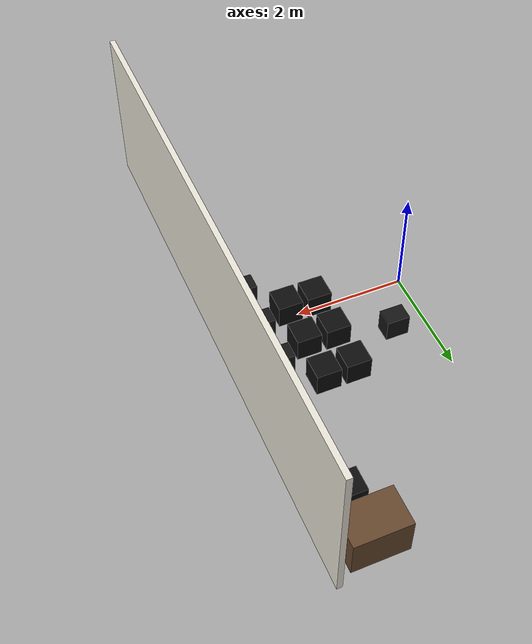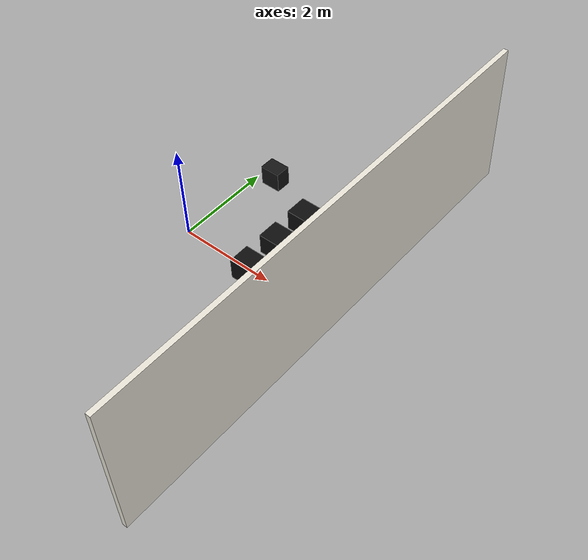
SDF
<sdf version="1.9">
 <world name="cs_classroom">
  <model name="wall_east">
   <static>true</static>
   <pose>3.55 0 1.5 0 0 0</pose>
   <link name="link">
    <collision name="collision"><geometry><box><size>0.1 10.0 3.0</size></box></geometry></collision>
    <visual name="visual">
     <geometry><box><size>0.1 10.0 3.0</size></box></geometry>
     <material>
      <ambient>0.92 0.9 0.85 1.0</ambient>
      <diffuse>0.92 0.9 0.85 1.0</diffuse>
      <specular>0.3 0.3 0.3 1.0</specular>
     </material>
    </visual>
   </link>
  </model>
  <model name="window_east">
   <static>true</static>
   <pose>3.45 0 1.5 0 0 0</pose>
   <link name="link">
    <visual name="visual">
     <geometry><box><size>0.04 7.0 1.0</size></box></geometry>
     <material>
      <ambient>0.45 0.65 0.95 0.45</ambient>
      <diffuse>0.45 0.65 0.95 0.45</diffuse>
      <specular>0.3 0.3 0.3 0.45</specular>
     </material>
    </visual>
   </link>
  </model>
  <model name="teacher_desk">
   <static>true</static>
   <pose>2.8 4.5 0.375 0 0 0</pose>
   <link name="link">
    <collision name="collision"><geometry><box><size>1.0 0.7 0.75</size></box></geometry></collision>
    <visual name="visual">
     <geometry><box><size>1.0 0.7 0.75</size></box></geometry>
     <material>
      <ambient>0.4 0.28 0.18 1.0</ambient>
      <diffuse>0.4 0.28 0.18 1.0</diffuse>
      <specular>0.3 0.3 0.3 1.0</specular>
     </material>
    </visual>
   </link>
  </model>
  <model name="teacher_chair">
   <static>true</static>
   <pose>2.8 3.7 0.225 0 0 0</pose>
   <link name="link">
    <collision name="collision"><geometry><box><size>0.45 0.45 0.45</size></box></geometry></collision>
    <visual name="visual">
     <geometry><box><size>0.45 0.45 0.45</size></box></geometry>
     <material>
      <ambient>0.05 0.05 0.05 1.0</ambient>
      <diffuse>0.05 0.05 0.05 1.0</diffuse>
      <specular>0.3 0.3 0.3 1.0</specular>
     </material>
    </visual>
   </link>
  </model>
  <model name="chair_T2_4">
   <static>true</static>
   <pose>1.65 -0.09999999999999964 0.225 0 0 0</pose>
   <link name="link">
    <collision name="collision"><geometry><box><size>0.45 0.45 0.45</size></box></geometry></collision>
    <visual name="visual">
     <geometry><box><size>0.45 0.45 0.45</size></box></geometry>
     <material>
      <ambient>0.05 0.05 0.05 1.0</ambient>
      <diffuse>0.05 0.05 0.05 1.0</diffuse>
      <specular>0.3 0.3 0.3 1.0</specular>
     </material>
    </visual>
   </link>
  </model>
  <model name="chair_T2_5">
   <static>true</static>
   <pose>1.65 0.7000000000000002 0.225 0 0 0</pose>
   <link name="link">
    <collision name="collision"><geometry><box><size>0.45 0.45 0.45</size></box></geometry></collision>
    <visual name="visual">
     <geometry><box><size>0.45 0.45 0.45</size></box></geometry>
     <material>
      <ambient>0.05 0.05 0.05 1.0</ambient>
      <diffuse>0.05 0.05 0.05 1.0</diffuse>
      <specular>0.3 0.3 0.3 1.0</specular>
     </material>
    </visual>
   </link>
  </model>
  <model name="ws_T2_6">
   <static>true</static>
   <pose>0.95 1.5 0.95 0 0 0</pose>
   <link name="link">
    <collision name="collision"><geometry><box><size>0.4 0.3 0.4</size></box></geometry></collision>
    <visual name="visual">
     <geometry><box><size>0.4 0.3 0.4</size></box></geometry>
     <material>
      <ambient>0.08 0.08 0.08 1.0</ambient>
      <diffuse>0.08 0.08 0.08 1.0</diffuse>
      <specular>0.3 0.3 0.3 1.0</specular>
     </material>
    </visual>
   </link>
  </model>
  <model name="chair_T2_6">
   <static>true</static>
   <pose>1.65 1.5 0.225 0 0 0</pose>
   <link name="link">
    <collision name="collision"><geometry><box><size>0.45 0.45 0.45</size></box></geometry></collision>
    <visual name="visual">
     <geometry><box><size>0.45 0.45 0.45</size></box></geometry>
     <material>
      <ambient>0.05 0.05 0.05 1.0</ambient>
      <diffuse>0.05 0.05 0.05 1.0</diffuse>
      <specular>0.3 0.3 0.3 1.0</specular>
     </material>
    </visual>
   </link>
  </model>
  <model name="ws_T3_4">
   <static>true</static>
   <pose>3.0 -0.09999999999999964 0.95 0 0 0</pose>
   <link name="link">
    <collision name="collision"><geometry><box><size>0.4 0.3 0.4</size></box></geometry></collision>
    <visual name="visual">
     <geometry><box><size>0.4 0.3 0.4</size></box></geometry>
     <material>
      <ambient>0.08 0.08 0.08 1.0</ambient>
      <diffuse>0.08 0.08 0.08 1.0</diffuse>
      <specular>0.3 0.3 0.3 1.0</specular>
     </material>
    </visual>
   </link>
  </model>
  <model name="chair_T3_4">
   <static>true</static>
   <pose>2.1999999999999997 -0.09999999999999964 0.225 0 0 0</pose>
   <link name="link">
    <collision name="collision"><geometry><box><size>0.45 0.45 0.45</size></box></geometry></collision>
    <visual name="visual">
     <geometry><box><size>0.45 0.45 0.45</size></box></geometry>
     <material>
      <ambient>0.05 0.05 0.05 1.0</ambient>
      <diffuse>0.05 0.05 0.05 1.0</diffuse>
      <specular>0.3 0.3 0.3 1.0</specular>
     </material>
    </visual>
   </link>
  </model>
  <model name="ws_T3_5">
   <static>true</static>
   <pose>3.0 0.7000000000000002 0.95 0 0 0</pose>
   <link name="link">
    <collision name="collision"><geometry><box><size>0.4 0.3 0.4</size></box></geometry></collision>
    <visual name="visual">
     <geometry><box><size>0.4 0.3 0.4</size></box></geometry>
     <material>
      <ambient>0.08 0.08 0.08 1.0</ambient>
      <diffuse>0.08 0.08 0.08 1.0</diffuse>
      <specular>0.3 0.3 0.3 1.0</specular>
     </material>
    </visual>
   </link>
  </model>
  <model name="chair_T3_5">
   <static>true</static>
   <pose>2.1999999999999997 0.7000000000000002 0.225 0 0 0</pose>
   <link name="link">
    <collision name="collision"><geometry><box><size>0.45 0.45 0.45</size></box></geometry></collision>
    <visual name="visual">
     <geometry><box><size>0.45 0.45 0.45</size></box></geometry>
     <material>
      <ambient>0.05 0.05 0.05 1.0</ambient>
      <diffuse>0.05 0.05 0.05 1.0</diffuse>
      <specular>0.3 0.3 0.3 1.0</specular>
     </material>
    </visual>
   </link>
  </model>
  <model name="ws_T3_6">
   <static>true</static>
   <pose>3.0 1.5 0.95 0 0 0</pose>
   <link name="link">
    <collision name="collision"><geometry><box><size>0.4 0.3 0.4</size></box></geometry></collision>
    <visual name="visual">
     <geometry><box><size>0.4 0.3 0.4</size></box></geometry>
     <material>
      <ambient>0.08 0.08 0.08 1.0</ambient>
      <diffuse>0.08 0.08 0.08 1.0</diffuse>
      <specular>0.3 0.3 0.3 1.0</specular>
     </material>
    </visual>
   </link>
  </model>
  <model name="chair_T3_6">
   <static>true</static>
   <pose>2.1999999999999997 1.5 0.225 0 0 0</pose>
   <link name="link">
    <collision name="collision"><geometry><box><size>0.45 0.45 0.45</size></box></geometry></collision>
    <visual name="visual">
     <geometry><box><size>0.45 0.45 0.45</size></box></geometry>
     <material>
      <ambient>0.05 0.05 0.05 1.0</ambient>
      <diffuse>0.05 0.05 0.05 1.0</diffuse>
      <specular>0.3 0.3 0.3 1.0</specular>
     </material>
    </visual>
   </link>
  </model>
 </world>
</sdf>
